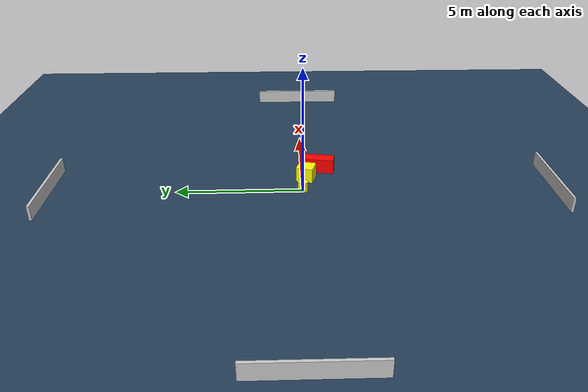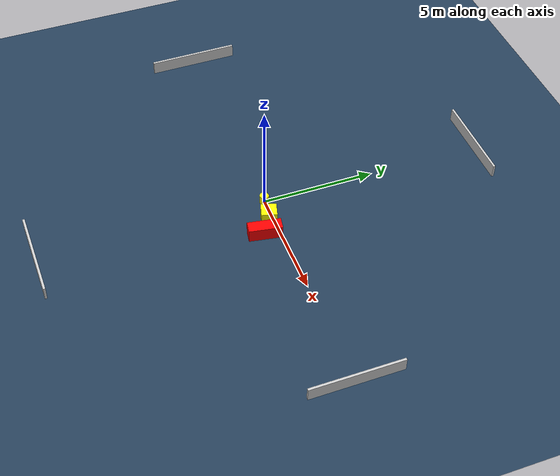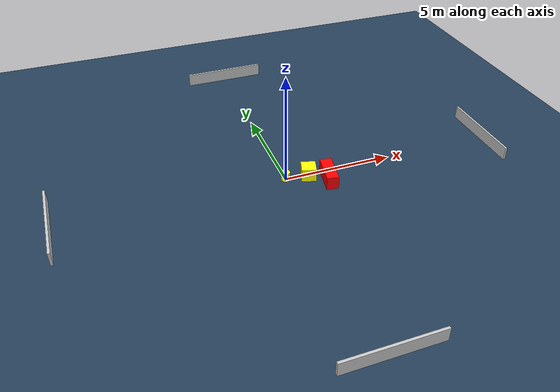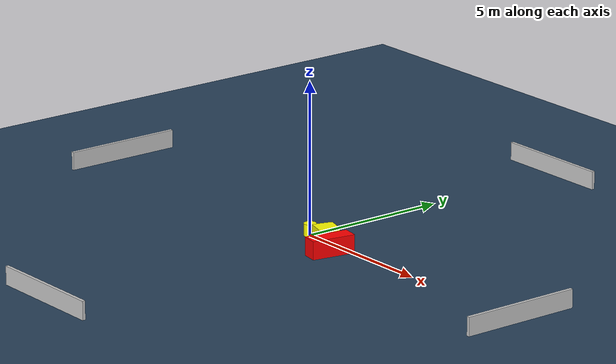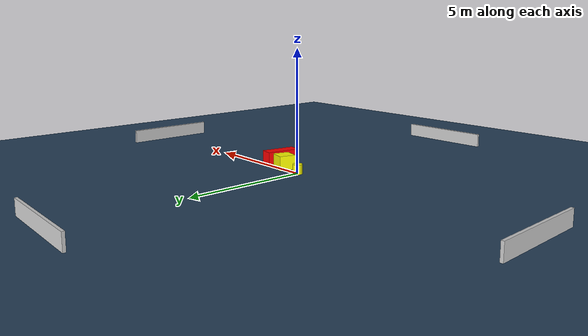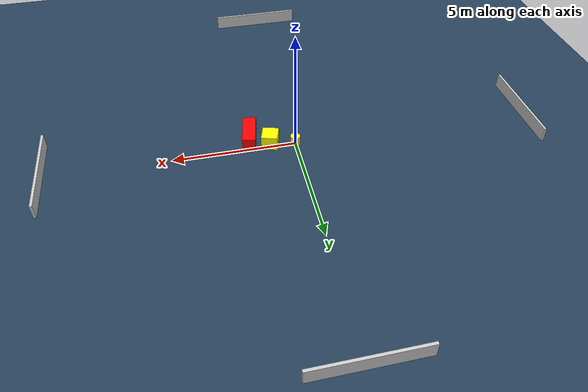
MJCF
<?xml version="1.0" ?>
<mujoco model="generated_environment">
  <option timestep="0.01" integrator="RK4" cone="elliptic"/>
  <default>
    <geom density="1"/>
  </default>
  <asset>
    <texture builtin="gradient" height="3072" name="skybox" rgb1="0.3 0.5 0.7" rgb2="0 0 0" type="skybox" width="512"/>
    <texture builtin="checker" height="300" name="groundplane" rgb1="0.2 0.3 0.4" rgb2="0.1 0.2 0.3" type="2d" width="300"/>
    <material name="groundplane" reflectance="0.2" texrepeat="5 5" texture="groundplane"/>
  </asset>
  <worldbody>
    <light dir="0 0 -1" directional="true" pos="0 0 1.5"/>
    <geom condim="3" friction="0.5 0.005 0.001" material="groundplane" name="floor" pos="0 0 0" size="0 0 0.05" type="plane"/>
    <body name="walls">
      <geom name="wall_1" condim="4" pos="-10.0 0.0 0.3" rgba="0.800000011920929 0.800000011920929 0.800000011920929 1.0" size="0.05 2.0 0.3" type="box"/>
      <geom name="wall_2" condim="4" pos="10.0 0.0 0.3" rgba="0.800000011920929 0.800000011920929 0.800000011920929 1.0" size="0.05 2.0 0.3" type="box"/>
      <geom name="wall_3" condim="4" pos="0.0 -10.0 0.3" rgba="0.800000011920929 0.800000011920929 0.800000011920929 1.0" size="2.0 0.05 0.3" type="box"/>
      <geom name="wall_4" condim="4" pos="0.0 10.0 0.3" rgba="0.800000011920929 0.800000011920929 0.800000011920929 1.0" size="2.0 0.05 0.3" type="box"/>
    </body>
    <body name="robot">
      <joint name="joint_x" type="slide" pos="0 0 0" axis="1 0 0"/>
      <joint name="joint_y" type="slide" pos="0 0 0" axis="0 1 0"/>
      <geom name="robot" type="cylinder" pos="0.0 0.0 0.2" size="0.2 0.2 0.0" mass="5.0" friction="1.0 0.005 0.0001" condim="4" rgba="1.0 1.0 0.0 1.0"/>
    </body>
    <body name="obstacle_1_movable">
      <geom name="obstacle_1_movable" condim="4" pos="1.0122246568824962 -0.16385143798418456 0.3" euler="0 0 253.84846431558194" friction="0.0 0.005 0.001" rgba="1.0 1.0 0.0 1.0" size="0.33977445444389287 0.32670220019235463 0.3" type="box" mass="0.1"/>
      <joint type="free"/>
    </body>
    <body name="obstacle_2_static">
      <geom name="obstacle_2_static" condim="4" pos="1.7926715077611117 -0.6302125096243083 0.3" euler="0 0 170.1671474064186" friction="0.0 0.005 0.001" rgba="1.0 0.0 0.0 1.0" size="0.2666028041647078 0.7232631005966283 0.3" type="box"/>
    </body>
  </worldbody>
  <actuator>
    <motor name="actuator_x" joint="joint_x" gear="1" ctrlrange="-1 1"/>
    <motor name="actuator_y" joint="joint_y" gear="1" ctrlrange="-1 1"/>
  </actuator>
</mujoco>
